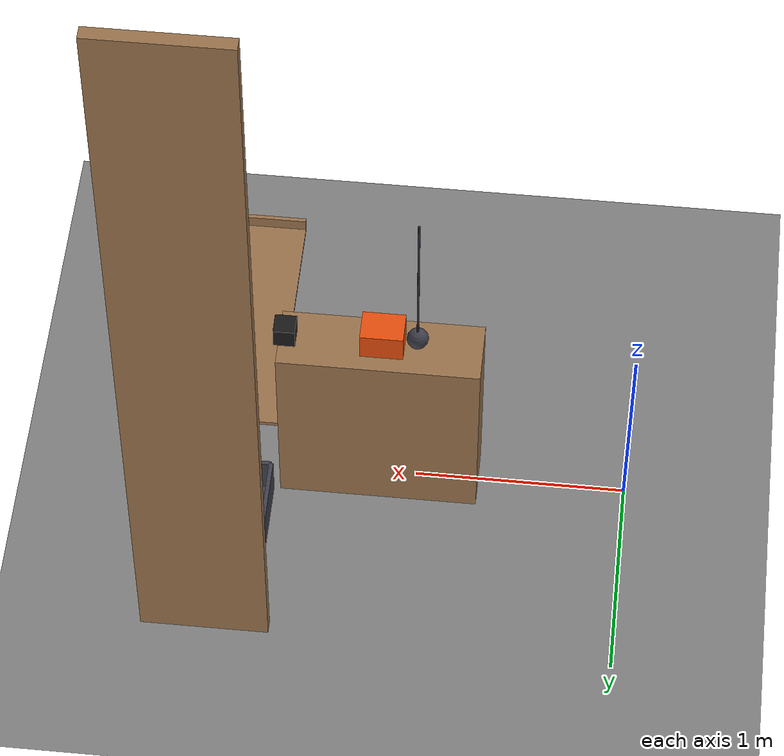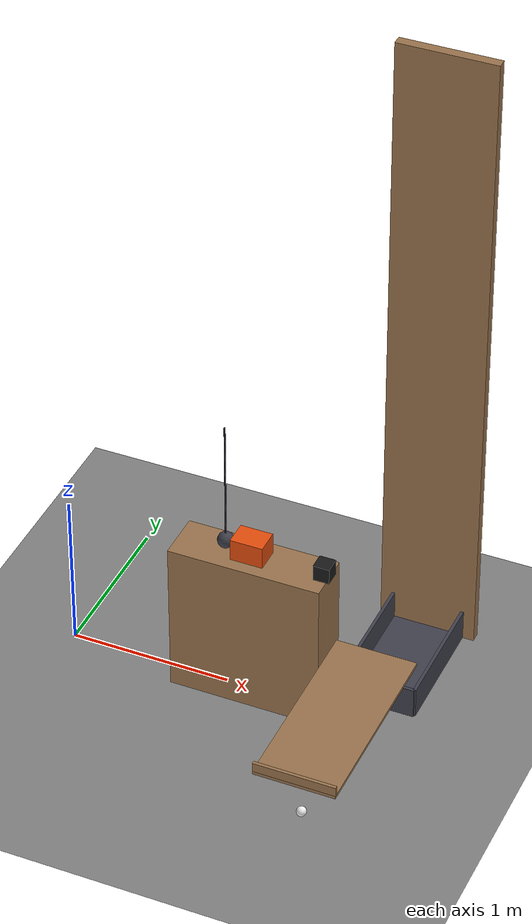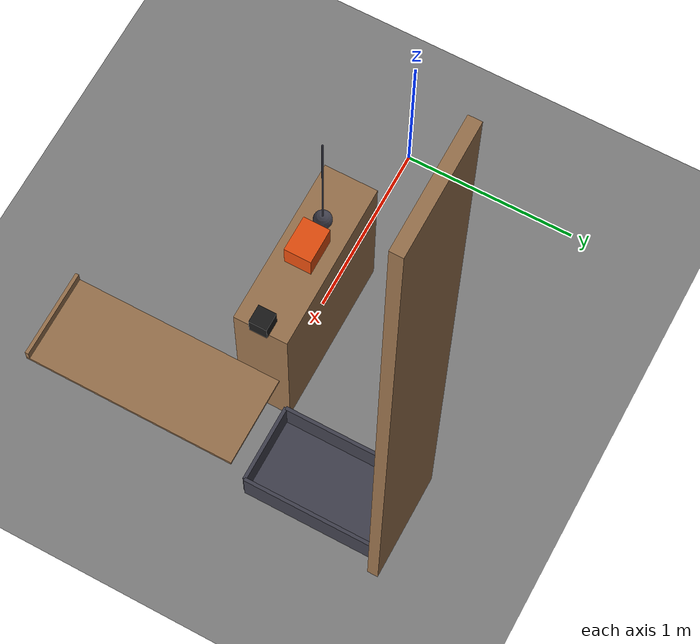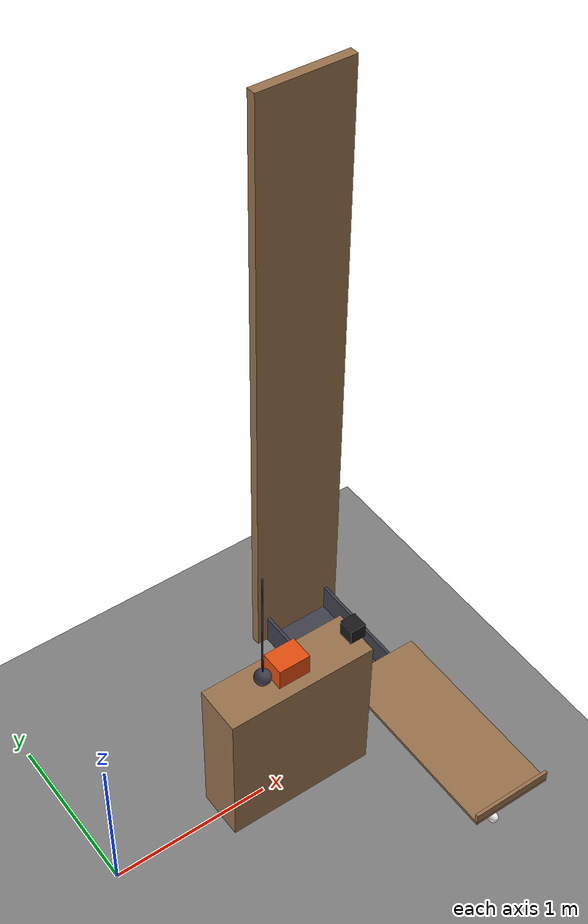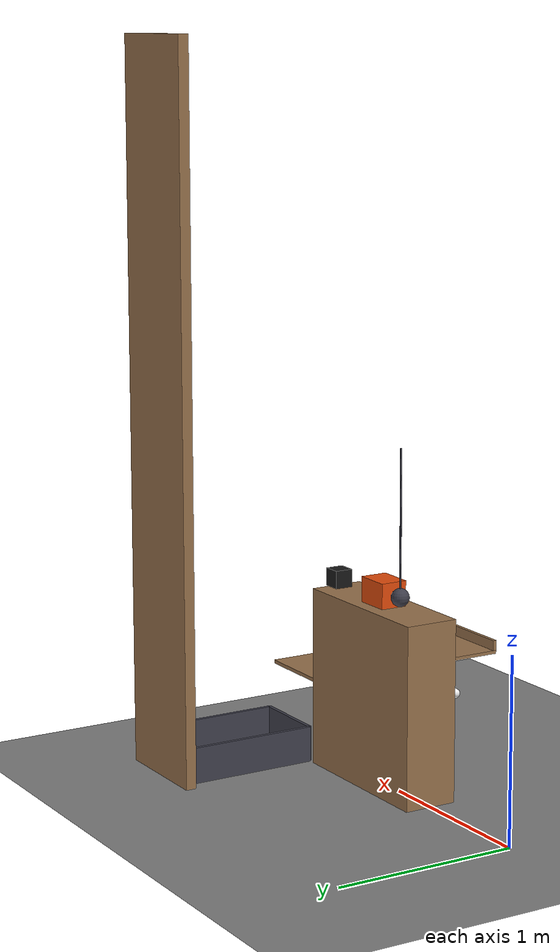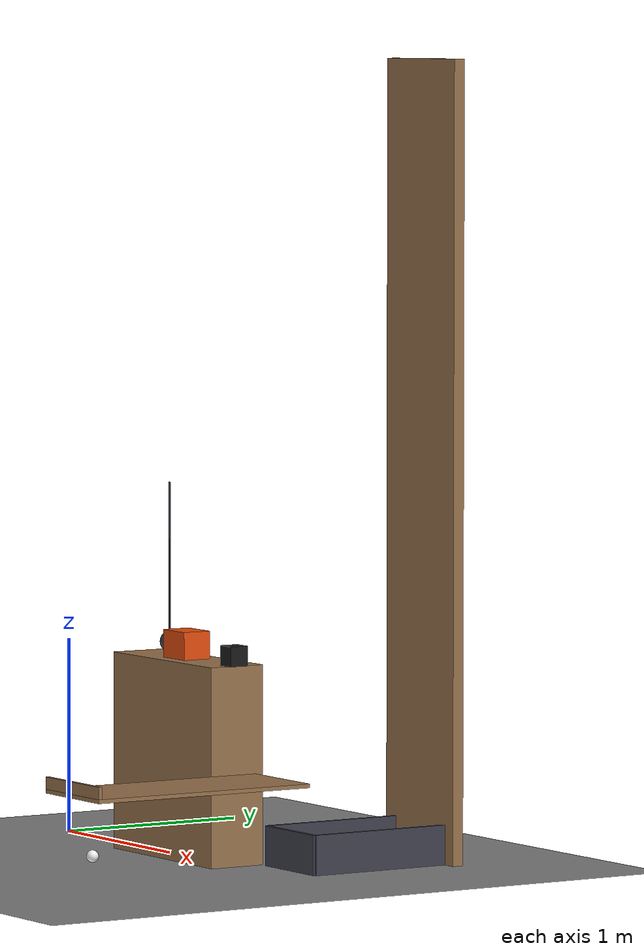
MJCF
<mujoco model="pendulum_cart_seesaw_cup">
  <compiler angle="radian"/>
  <option timestep="0.002"/>
  <worldbody>
    <geom name="floor" type="plane" size="8 8 0.1" friction="0.8 0.005 0.002"/>
    <body name="pendulum" pos="1 0 1.87">
      <joint name="pendulum_hinge" type="hinge" pos="0 0 0" axis="0 1 0"/>
      <geom name="pendulum" type="sphere" pos="0 0 -0.8" size="0.05" mass="1" rgba="0.25 0.25 0.3 1"/>
      <geom name="pendulum rod" type="capsule" size="0.005" fromto="0 0 0 0 0 -0.75" mass="0.1" contype="0" conaffinity="0" rgba="0.2 0.2 0.25 1"/>
    </body>
    <body name="platform">
      <geom name="platform" type="box" pos="1.17 0 0.5" size="0.47 0.15 0.5" friction="0.1 0.005 0.0001" rgba="0.6 0.45 0.3 1"/>
    </body>
    <body name="cart" pos="1.16 0 1.07">
      <freejoint/>
      <geom name="cart" type="box" pos="0 0 0" size="0.1 0.075 0.07" mass="0.5" friction="0.1 0.005 0.0001" rgba="0.9 0.3 0.05 1"/>
    </body>
    <body name="weight" pos="1.61 0 1.05">
      <freejoint/>
      <geom name="weight" type="box" pos="0 0 0" size="0.05 0.05 0.05" mass="1.5" friction="0.1 0.005 0.0001" rgba="0.1 0.1 0.1 1"/>
    </body>
    <body name="seesaw" pos="1.9 -0.25 0.45">
      <joint name="seesaw_hinge" type="hinge" pos="0 0 0" axis="1 0 0" limited="true" range="-0.436332 0.436332" armature="0.002"/>
      <geom name="seesaw" type="box" pos="0 -0.25 0" size="0.25 0.6 0.01" mass="0.4" friction="0.8 0.005 0.0001" rgba="0.6 0.45 0.3 1"/>
      <geom name="seesaw lip" type="box" pos="0 -0.84 0.04" size="0.25 0.01 0.03" mass="0.02" rgba="0.6 0.45 0.3 1"/>
    </body>
    <body name="ball" pos="1.9 -0.987 0.152">
      <freejoint/>
      <geom name="ball" type="sphere" pos="0 0 0" size="0.03" mass="0.05" condim="6" friction="0.8 0.01 0.01" solref="0.01 1" rgba="0.95 0.95 0.95 1"/>
    </body>
    <body name="cup">
      <geom name="cup_base" type="box" pos="1.9 0.55 0.01" size="0.22 0.4 0.01" solref="0.01 1" rgba="0.25 0.25 0.3 1"/>
      <geom name="cup_near_wall" type="box" pos="1.68 0.55 0.1" size="0.01 0.4 0.1" solref="0.01 1" rgba="0.25 0.25 0.3 1"/>
      <geom name="cup_far_wall" type="box" pos="2.12 0.55 0.1" size="0.01 0.4 0.1" solref="0.01 1" rgba="0.25 0.25 0.3 1"/>
      <geom name="cup_left_wall" type="box" pos="1.9 0.95 0.1" size="0.22 0.01 0.1" solref="0.01 1" rgba="0.25 0.25 0.3 1"/>
      <geom name="cup_right_wall" type="box" pos="1.9 0.15 0.1" size="0.22 0.01 0.1" solref="0.01 1" rgba="0.25 0.25 0.3 1"/>
    </body>
    <body name="backboard">
      <geom name="backboard" type="box" pos="1.9 0.94 2" size="0.3 0.03 2" solref="0.01 1" rgba="0.6 0.45 0.3 1"/>
    </body>
  </worldbody>
  <keyframe>
    <key name="start" qpos="1.31772 1.16 0 1.07 1 0 0 0 1.61 0 1.05 1 0 0 0 0.436332 1.9 -0.987 0.152 1 0 0 0" qvel="0 0 0 0 0 0 0 0 0 0 0 0 0 0 0 0 0 0 0 0"/>
  </keyframe>
</mujoco>
